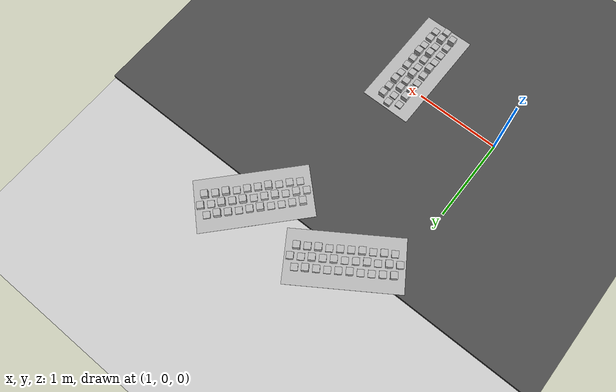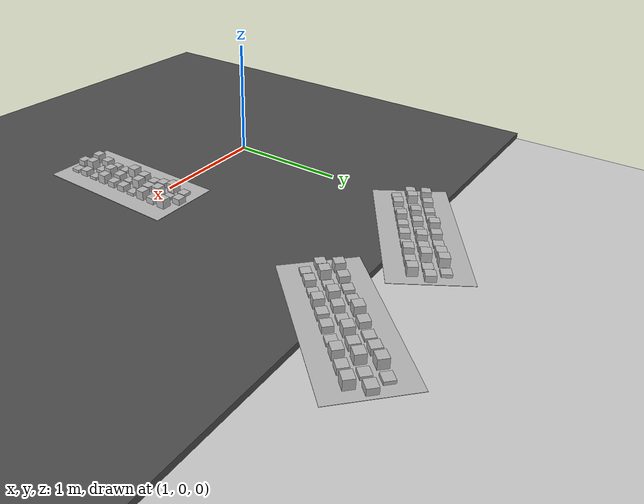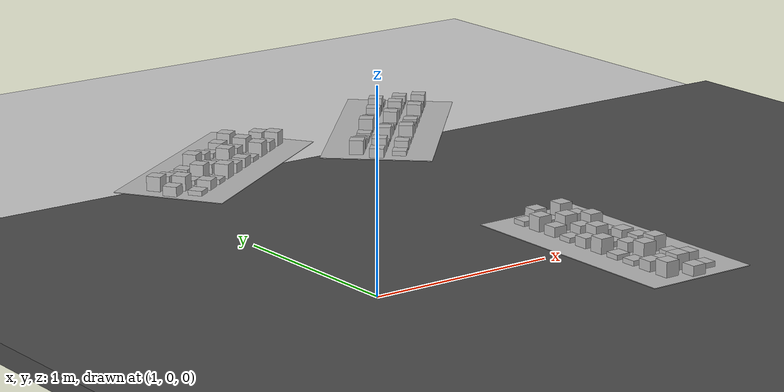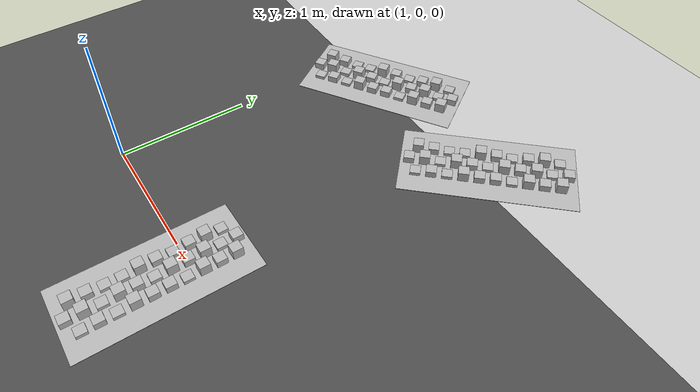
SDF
<sdf version="1.6">
 <world name="default">
  <model name="ground_plane">
   <static>1</static>
   <link name="link">
    <collision name="collision">
     <geometry><plane><normal>0 0 1</normal><size>100 100</size></plane></geometry>
     <surface>
      <contact><collide_bitmask>65535</collide_bitmask></contact>
      <friction><ode><mu>100</mu><mu2>50</mu2></ode></friction>
     </surface>
    </collision>
    <visual name="visual">
     <cast_shadows>0</cast_shadows>
     <geometry><plane><normal>0 0 1</normal><size>100 100</size></plane></geometry>
     <material>
      <script><uri>file://media/materials/scripts/gazebo.material</uri><name>Gazebo/Grey</name></script>
     </material>
    </visual>
   </link>
  </model>
  <model name="frc2016_roughterrain_clone_clone_10">
   <static>1</static>
   <link name="link">
    <visual name="platform">
     <pose>0 0 0.08269 0 -0 0</pose>
     <geometry><box><size>1.27 0.5969 0.003175</size></box></geometry>
    </visual>
    <collision name="platform">
     <pose>0 0 0.08269 0 -0 0</pose>
     <geometry><box><size>1.27 0.5969 0.003175</size></box></geometry>
    </collision>
    <visual name="row1_block1_sm">
     <pose>0.51435 0.1143 0.09698 0 -0 0</pose>
     <geometry><box><size>0.0762 0.0762 0.0254</size></box></geometry>
    </visual>
    <collision name="row1_block1_sm">
     <pose>0.51435 0.1143 0.09698 0 -0 0</pose>
     <geometry><box><size>0.0762 0.0762 0.0254</size></box></geometry>
    </collision>
    <visual name="row1_block2_lg">
     <pose>0.40005 0.1143 0.12238 0 -0 0</pose>
     <geometry><box><size>0.0762 0.0762 0.0762</size></box></geometry>
    </visual>
    <collision name="row1_block2_lg">
     <pose>0.40005 0.1143 0.12238 0 -0 0</pose>
     <geometry><box><size>0.0762 0.0762 0.0762</size></box></geometry>
    </collision>
    <visual name="row1_block3_md">
     <pose>0.28575 0.1143 0.10968 0 -0 0</pose>
     <geometry><box><size>0.0762 0.0762 0.0508</size></box></geometry>
    </visual>
    <collision name="row1_block3_md">
     <pose>0.28575 0.1143 0.10968 0 -0 0</pose>
     <geometry><box><size>0.0762 0.0762 0.0508</size></box></geometry>
    </collision>
    <visual name="row1_block4_sm">
     <pose>0.17145 0.1143 0.09698 0 -0 0</pose>
     <geometry><box><size>0.0762 0.0762 0.0254</size></box></geometry>
    </visual>
    <collision name="row1_block4_sm">
     <pose>0.17145 0.1143 0.09698 0 -0 0</pose>
     <geometry><box><size>0.0762 0.0762 0.0254</size></box></geometry>
    </collision>
    <visual name="row1_block5_md">
     <pose>0.05715 0.1143 0.10968 0 -0 0</pose>
     <geometry><box><size>0.0762 0.0762 0.0508</size></box></geometry>
    </visual>
    <collision name="row1_block5_md">
     <pose>0.05715 0.1143 0.10968 0 -0 0</pose>
     <geometry><box><size>0.0762 0.0762 0.0508</size></box></geometry>
    </collision>
    <visual name="row1_block6_lg">
     <pose>-0.05715 0.1143 0.12238 0 -0 0</pose>
     <geometry><box><size>0.0762 0.0762 0.0762</size></box></geometry>
    </visual>
    <collision name="row1_block6_lg">
     <pose>-0.05715 0.1143 0.12238 0 -0 0</pose>
     <geometry><box><size>0.0762 0.0762 0.0762</size></box></geometry>
    </collision>
    <visual name="row1_block7_sm">
     <pose>-0.17145 0.1143 0.09698 0 -0 0</pose>
     <geometry><box><size>0.0762 0.0762 0.0254</size></box></geometry>
    </visual>
    <collision name="row1_block7_sm">
     <pose>-0.17145 0.1143 0.09698 0 -0 0</pose>
     <geometry><box><size>0.0762 0.0762 0.0254</size></box></geometry>
    </collision>
    <visual name="row1_block8_sm">
     <pose>-0.28575 0.1143 0.09698 0 -0 0</pose>
     <geometry><box><size>0.0762 0.0762 0.0254</size></box></geometry>
    </visual>
    <collision name="row1_block8_sm">
     <pose>-0.28575 0.1143 0.09698 0 -0 0</pose>
     <geometry><box><size>0.0762 0.0762 0.0254</size></box></geometry>
    </collision>
    <visual name="row1_block9_md">
     <pose>-0.40005 0.1143 0.10968 0 -0 0</pose>
     <geometry><box><size>0.0762 0.0762 0.0508</size></box></geometry>
    </visual>
    <collision name="row1_block9_md">
     <pose>-0.40005 0.1143 0.10968 0 -0 0</pose>
     <geometry><box><size>0.0762 0.0762 0.0508</size></box></geometry>
    </collision>
    <visual name="row1_block10_lg">
     <pose>-0.51435 0.1143 0.12238 0 -0 0</pose>
     <geometry><box><size>0.0762 0.0762 0.0762</size></box></geometry>
    </visual>
    <collision name="row1_block10_lg">
     <pose>-0.51435 0.1143 0.12238 0 -0 0</pose>
     <geometry><box><size>0.0762 0.0762 0.0762</size></box></geometry>
    </collision>
    <visual name="row2_block1_md">
     <pose>0.5715 0 0.10968 0 -0 0</pose>
     <geometry><box><size>0.0762 0.0762 0.0508</size></box></geometry>
    </visual>
    <collision name="row2_block1_md">
     <pose>0.5715 0 0.10968 0 -0 0</pose>
     <geometry><box><size>0.0762 0.0762 0.0508</size></box></geometry>
    </collision>
    <visual name="row2_block2_sm">
     <pose>0.4572 0 0.09698 0 -0 0</pose>
     <geometry><box><size>0.0762 0.0762 0.0254</size></box></geometry>
    </visual>
    <collision name="row2_block2_sm">
     <pose>0.4572 0 0.09698 0 -0 0</pose>
     <geometry><box><size>0.0762 0.0762 0.0254</size></box></geometry>
    </collision>
    <visual name="row2_block3_lg">
     <pose>0.3429 0 0.12238 0 -0 0</pose>
     <geometry><box><size>0.0762 0.0762 0.0762</size></box></geometry>
    </visual>
    <collision name="row2_block3_lg">
     <pose>0.3429 0 0.12238 0 -0 0</pose>
     <geometry><box><size>0.0762 0.0762 0.0762</size></box></geometry>
    </collision>
    <visual name="row2_block4_md">
     <pose>0.2286 0 0.10968 0 -0 0</pose>
     <geometry><box><size>0.0762 0.0762 0.0508</size></box></geometry>
    </visual>
    <collision name="row2_block4_md">
     <pose>0.2286 0 0.10968 0 -0 0</pose>
     <geometry><box><size>0.0762 0.0762 0.0508</size></box></geometry>
    </collision>
    <visual name="row2_block5_lg">
     <pose>0.1143 0 0.12238 0 -0 0</pose>
     <geometry><box><size>0.0762 0.0762 0.0762</size></box></geometry>
    </visual>
    <collision name="row2_block5_lg">
     <pose>0.1143 0 0.12238 0 -0 0</pose>
     <geometry><box><size>0.0762 0.0762 0.0762</size></box></geometry>
    </collision>
    <visual name="row2_block6_sm">
     <pose>0 0 0.09698 0 -0 0</pose>
     <geometry><box><size>0.0762 0.0762 0.0254</size></box></geometry>
    </visual>
    <collision name="row2_block6_sm">
     <pose>0 0 0.09698 0 -0 0</pose>
     <geometry><box><size>0.0762 0.0762 0.0254</size></box></geometry>
    </collision>
    <visual name="row2_block7_md">
     <pose>-0.1143 0 0.10968 0 -0 0</pose>
     <geometry><box><size>0.0762 0.0762 0.0508</size></box></geometry>
    </visual>
    <collision name="row2_block7_md">
     <pose>-0.1143 0 0.10968 0 -0 0</pose>
     <geometry><box><size>0.0762 0.0762 0.0508</size></box></geometry>
    </collision>
    <visual name="row2_block8_lg">
     <pose>-0.2286 0 0.12238 0 -0 0</pose>
     <geometry><box><size>0.0762 0.0762 0.0762</size></box></geometry>
    </visual>
    <collision name="row2_block8_lg">
     <pose>-0.2286 0 0.12238 0 -0 0</pose>
     <geometry><box><size>0.0762 0.0762 0.0762</size></box></geometry>
    </collision>
    <visual name="row2_block9_sm">
     <pose>-0.3429 0 0.09698 0 -0 0</pose>
     <geometry><box><size>0.0762 0.0762 0.0254</size></box></geometry>
    </visual>
    <collision name="row2_block9_sm">
     <pose>-0.3429 0 0.09698 0 -0 0</pose>
     <geometry><box><size>0.0762 0.0762 0.0254</size></box></geometry>
    </collision>
    <visual name="row2_block10_lg">
     <pose>-0.4572 0 0.12238 0 -0 0</pose>
     <geometry><box><size>0.0762 0.0762 0.0762</size></box></geometry>
    </visual>
    <collision name="row2_block10_lg">
     <pose>-0.4572 0 0.12238 0 -0 0</pose>
     <geometry><box><size>0.0762 0.0762 0.0762</size></box></geometry>
    </collision>
    <visual name="row2_block11_md">
     <pose>-0.5715 0 0.10968 0 -0 0</pose>
     <geometry><box><size>0.0762 0.0762 0.0508</size></box></geometry>
    </visual>
    <collision name="row2_block11_md">
     <pose>-0.5715 0 0.10968 0 -0 0</pose>
     <geometry><box><size>0.0762 0.0762 0.0508</size></box></geometry>
    </collision>
    <visual name="row3_block1_lg">
     <pose>0.51435 -0.1143 0.12238 0 -0 0</pose>
     <geometry><box><size>0.0762 0.0762 0.0762</size></box></geometry>
    </visual>
    <collision name="row3_block1_lg">
     <pose>0.51435 -0.1143 0.12238 0 -0 0</pose>
     <geometry><box><size>0.0762 0.0762 0.0762</size></box></geometry>
    </collision>
    <visual name="row3_block2_md">
     <pose>0.40005 -0.1143 0.10968 0 -0 0</pose>
     <geometry><box><size>0.0762 0.0762 0.0508</size></box></geometry>
    </visual>
    <collision name="row3_block2_md">
     <pose>0.40005 -0.1143 0.10968 0 -0 0</pose>
     <geometry><box><size>0.0762 0.0762 0.0508</size></box></geometry>
    </collision>
    <visual name="row3_block3_lg">
     <pose>0.28575 -0.1143 0.12238 0 -0 0</pose>
     <geometry><box><size>0.0762 0.0762 0.0762</size></box></geometry>
    </visual>
    <collision name="row3_block3_lg">
     <pose>0.28575 -0.1143 0.12238 0 -0 0</pose>
     <geometry><box><size>0.0762 0.0762 0.0762</size></box></geometry>
    </collision>
    <visual name="row3_block4_sm">
     <pose>0.17145 -0.1143 0.09698 0 -0 0</pose>
     <geometry><box><size>0.0762 0.0762 0.0254</size></box></geometry>
    </visual>
    <collision name="row3_block4_sm">
     <pose>0.17145 -0.1143 0.09698 0 -0 0</pose>
     <geometry><box><size>0.0762 0.0762 0.0254</size></box></geometry>
    </collision>
    <visual name="row3_block5_md">
     <pose>0.05715 -0.1143 0.10968 0 -0 0</pose>
     <geometry><box><size>0.0762 0.0762 0.0508</size></box></geometry>
    </visual>
    <collision name="row3_block5_md">
     <pose>0.05715 -0.1143 0.10968 0 -0 0</pose>
     <geometry><box><size>0.0762 0.0762 0.0508</size></box></geometry>
    </collision>
    <visual name="row3_block6_md">
     <pose>-0.05715 -0.1143 0.10968 0 -0 0</pose>
     <geometry><box><size>0.0762 0.0762 0.0508</size></box></geometry>
    </visual>
    <collision name="row3_block6_md">
     <pose>-0.05715 -0.1143 0.10968 0 -0 0</pose>
     <geometry><box><size>0.0762 0.0762 0.0508</size></box></geometry>
    </collision>
    <visual name="row3_block7_lg">
     <pose>-0.17145 -0.1143 0.12238 0 -0 0</pose>
     <geometry><box><size>0.0762 0.0762 0.0762</size></box></geometry>
    </visual>
    <collision name="row3_block7_lg">
     <pose>-0.17145 -0.1143 0.12238 0 -0 0</pose>
     <geometry><box><size>0.0762 0.0762 0.0762</size></box></geometry>
    </collision>
    <visual name="row3_block8_sm">
     <pose>-0.28575 -0.1143 0.09698 0 -0 0</pose>
     <geometry><box><size>0.0762 0.0762 0.0254</size></box></geometry>
    </visual>
    <collision name="row3_block8_sm">
     <pose>-0.28575 -0.1143 0.09698 0 -0 0</pose>
     <geometry><box><size>0.0762 0.0762 0.0254</size></box></geometry>
    </collision>
    <visual name="row3_block9_md">
     <pose>-0.40005 -0.1143 0.10968 0 -0 0</pose>
     <geometry><box><size>0.0762 0.0762 0.0508</size></box></geometry>
    </visual>
    <collision name="row3_block9_md">
     <pose>-0.40005 -0.1143 0.10968 0 -0 0</pose>
     <geometry><box><size>0.0762 0.0762 0.0508</size></box></geometry>
    </collision>
    <visual name="row3_block10_sm">
     <pose>-0.51435 -0.1143 0.09698 0 -0 0</pose>
     <geometry><box><size>0.0762 0.0762 0.0254</size></box></geometry>
    </visual>
    <collision name="row3_block10_sm">
     <pose>-0.51435 -0.1143 0.09698 0 -0 0</pose>
     <geometry><box><size>0.0762 0.0762 0.0254</size></box></geometry>
    </collision>
   </link>
   <pose>2.2298 -0.228684 0 0 -0 1.57</pose>
  </model>
  <model name="frc2016_roughterrain_clone_clone_12">
   <static>1</static>
   <link name="link">
    <visual name="platform">
     <pose>0 0 0.08269 0 -0 0</pose>
     <geometry><box><size>1.27 0.5969 0.003175</size></box></geometry>
    </visual>
    <collision name="platform">
     <pose>0 0 0.08269 0 -0 0</pose>
     <geometry><box><size>1.27 0.5969 0.003175</size></box></geometry>
    </collision>
    <visual name="row1_block1_sm">
     <pose>0.51435 0.1143 0.09698 0 -0 0</pose>
     <geometry><box><size>0.0762 0.0762 0.0254</size></box></geometry>
    </visual>
    <collision name="row1_block1_sm">
     <pose>0.51435 0.1143 0.09698 0 -0 0</pose>
     <geometry><box><size>0.0762 0.0762 0.0254</size></box></geometry>
    </collision>
    <visual name="row1_block2_lg">
     <pose>0.40005 0.1143 0.12238 0 -0 0</pose>
     <geometry><box><size>0.0762 0.0762 0.0762</size></box></geometry>
    </visual>
    <collision name="row1_block2_lg">
     <pose>0.40005 0.1143 0.12238 0 -0 0</pose>
     <geometry><box><size>0.0762 0.0762 0.0762</size></box></geometry>
    </collision>
    <visual name="row1_block3_md">
     <pose>0.28575 0.1143 0.10968 0 -0 0</pose>
     <geometry><box><size>0.0762 0.0762 0.0508</size></box></geometry>
    </visual>
    <collision name="row1_block3_md">
     <pose>0.28575 0.1143 0.10968 0 -0 0</pose>
     <geometry><box><size>0.0762 0.0762 0.0508</size></box></geometry>
    </collision>
    <visual name="row1_block4_sm">
     <pose>0.17145 0.1143 0.09698 0 -0 0</pose>
     <geometry><box><size>0.0762 0.0762 0.0254</size></box></geometry>
    </visual>
    <collision name="row1_block4_sm">
     <pose>0.17145 0.1143 0.09698 0 -0 0</pose>
     <geometry><box><size>0.0762 0.0762 0.0254</size></box></geometry>
    </collision>
    <visual name="row1_block5_md">
     <pose>0.05715 0.1143 0.10968 0 -0 0</pose>
     <geometry><box><size>0.0762 0.0762 0.0508</size></box></geometry>
    </visual>
    <collision name="row1_block5_md">
     <pose>0.05715 0.1143 0.10968 0 -0 0</pose>
     <geometry><box><size>0.0762 0.0762 0.0508</size></box></geometry>
    </collision>
    <visual name="row1_block6_lg">
     <pose>-0.05715 0.1143 0.12238 0 -0 0</pose>
     <geometry><box><size>0.0762 0.0762 0.0762</size></box></geometry>
    </visual>
    <collision name="row1_block6_lg">
     <pose>-0.05715 0.1143 0.12238 0 -0 0</pose>
     <geometry><box><size>0.0762 0.0762 0.0762</size></box></geometry>
    </collision>
    <visual name="row1_block7_sm">
     <pose>-0.17145 0.1143 0.09698 0 -0 0</pose>
     <geometry><box><size>0.0762 0.0762 0.0254</size></box></geometry>
    </visual>
    <collision name="row1_block7_sm">
     <pose>-0.17145 0.1143 0.09698 0 -0 0</pose>
     <geometry><box><size>0.0762 0.0762 0.0254</size></box></geometry>
    </collision>
    <visual name="row1_block8_sm">
     <pose>-0.28575 0.1143 0.09698 0 -0 0</pose>
     <geometry><box><size>0.0762 0.0762 0.0254</size></box></geometry>
    </visual>
    <collision name="row1_block8_sm">
     <pose>-0.28575 0.1143 0.09698 0 -0 0</pose>
     <geometry><box><size>0.0762 0.0762 0.0254</size></box></geometry>
    </collision>
    <visual name="row1_block9_md">
     <pose>-0.40005 0.1143 0.10968 0 -0 0</pose>
     <geometry><box><size>0.0762 0.0762 0.0508</size></box></geometry>
    </visual>
    <collision name="row1_block9_md">
     <pose>-0.40005 0.1143 0.10968 0 -0 0</pose>
     <geometry><box><size>0.0762 0.0762 0.0508</size></box></geometry>
    </collision>
    <visual name="row1_block10_lg">
     <pose>-0.51435 0.1143 0.12238 0 -0 0</pose>
     <geometry><box><size>0.0762 0.0762 0.0762</size></box></geometry>
    </visual>
    <collision name="row1_block10_lg">
     <pose>-0.51435 0.1143 0.12238 0 -0 0</pose>
     <geometry><box><size>0.0762 0.0762 0.0762</size></box></geometry>
    </collision>
    <visual name="row2_block1_md">
     <pose>0.5715 0 0.10968 0 -0 0</pose>
     <geometry><box><size>0.0762 0.0762 0.0508</size></box></geometry>
    </visual>
    <collision name="row2_block1_md">
     <pose>0.5715 0 0.10968 0 -0 0</pose>
     <geometry><box><size>0.0762 0.0762 0.0508</size></box></geometry>
    </collision>
    <visual name="row2_block2_sm">
     <pose>0.4572 0 0.09698 0 -0 0</pose>
     <geometry><box><size>0.0762 0.0762 0.0254</size></box></geometry>
    </visual>
    <collision name="row2_block2_sm">
     <pose>0.4572 0 0.09698 0 -0 0</pose>
     <geometry><box><size>0.0762 0.0762 0.0254</size></box></geometry>
    </collision>
    <visual name="row2_block3_lg">
     <pose>0.3429 0 0.12238 0 -0 0</pose>
     <geometry><box><size>0.0762 0.0762 0.0762</size></box></geometry>
    </visual>
    <collision name="row2_block3_lg">
     <pose>0.3429 0 0.12238 0 -0 0</pose>
     <geometry><box><size>0.0762 0.0762 0.0762</size></box></geometry>
    </collision>
    <visual name="row2_block4_md">
     <pose>0.2286 0 0.10968 0 -0 0</pose>
     <geometry><box><size>0.0762 0.0762 0.0508</size></box></geometry>
    </visual>
    <collision name="row2_block4_md">
     <pose>0.2286 0 0.10968 0 -0 0</pose>
     <geometry><box><size>0.0762 0.0762 0.0508</size></box></geometry>
    </collision>
    <visual name="row2_block5_lg">
     <pose>0.1143 0 0.12238 0 -0 0</pose>
     <geometry><box><size>0.0762 0.0762 0.0762</size></box></geometry>
    </visual>
    <collision name="row2_block5_lg">
     <pose>0.1143 0 0.12238 0 -0 0</pose>
     <geometry><box><size>0.0762 0.0762 0.0762</size></box></geometry>
    </collision>
    <visual name="row2_block6_sm">
     <pose>0 0 0.09698 0 -0 0</pose>
     <geometry><box><size>0.0762 0.0762 0.0254</size></box></geometry>
    </visual>
    <collision name="row2_block6_sm">
     <pose>0 0 0.09698 0 -0 0</pose>
     <geometry><box><size>0.0762 0.0762 0.0254</size></box></geometry>
    </collision>
    <visual name="row2_block7_md">
     <pose>-0.1143 0 0.10968 0 -0 0</pose>
     <geometry><box><size>0.0762 0.0762 0.0508</size></box></geometry>
    </visual>
    <collision name="row2_block7_md">
     <pose>-0.1143 0 0.10968 0 -0 0</pose>
     <geometry><box><size>0.0762 0.0762 0.0508</size></box></geometry>
    </collision>
    <visual name="row2_block8_lg">
     <pose>-0.2286 0 0.12238 0 -0 0</pose>
     <geometry><box><size>0.0762 0.0762 0.0762</size></box></geometry>
    </visual>
    <collision name="row2_block8_lg">
     <pose>-0.2286 0 0.12238 0 -0 0</pose>
     <geometry><box><size>0.0762 0.0762 0.0762</size></box></geometry>
    </collision>
    <visual name="row2_block9_sm">
     <pose>-0.3429 0 0.09698 0 -0 0</pose>
     <geometry><box><size>0.0762 0.0762 0.0254</size></box></geometry>
    </visual>
    <collision name="row2_block9_sm">
     <pose>-0.3429 0 0.09698 0 -0 0</pose>
     <geometry><box><size>0.0762 0.0762 0.0254</size></box></geometry>
    </collision>
    <visual name="row2_block10_lg">
     <pose>-0.4572 0 0.12238 0 -0 0</pose>
     <geometry><box><size>0.0762 0.0762 0.0762</size></box></geometry>
    </visual>
    <collision name="row2_block10_lg">
     <pose>-0.4572 0 0.12238 0 -0 0</pose>
     <geometry><box><size>0.0762 0.0762 0.0762</size></box></geometry>
    </collision>
    <visual name="row2_block11_md">
     <pose>-0.5715 0 0.10968 0 -0 0</pose>
     <geometry><box><size>0.0762 0.0762 0.0508</size></box></geometry>
    </visual>
    <collision name="row2_block11_md">
     <pose>-0.5715 0 0.10968 0 -0 0</pose>
     <geometry><box><size>0.0762 0.0762 0.0508</size></box></geometry>
    </collision>
    <visual name="row3_block1_lg">
     <pose>0.51435 -0.1143 0.12238 0 -0 0</pose>
     <geometry><box><size>0.0762 0.0762 0.0762</size></box></geometry>
    </visual>
    <collision name="row3_block1_lg">
     <pose>0.51435 -0.1143 0.12238 0 -0 0</pose>
     <geometry><box><size>0.0762 0.0762 0.0762</size></box></geometry>
    </collision>
    <visual name="row3_block2_md">
     <pose>0.40005 -0.1143 0.10968 0 -0 0</pose>
     <geometry><box><size>0.0762 0.0762 0.0508</size></box></geometry>
    </visual>
    <collision name="row3_block2_md">
     <pose>0.40005 -0.1143 0.10968 0 -0 0</pose>
     <geometry><box><size>0.0762 0.0762 0.0508</size></box></geometry>
    </collision>
    <visual name="row3_block3_lg">
     <pose>0.28575 -0.1143 0.12238 0 -0 0</pose>
     <geometry><box><size>0.0762 0.0762 0.0762</size></box></geometry>
    </visual>
    <collision name="row3_block3_lg">
     <pose>0.28575 -0.1143 0.12238 0 -0 0</pose>
     <geometry><box><size>0.0762 0.0762 0.0762</size></box></geometry>
    </collision>
    <visual name="row3_block4_sm">
     <pose>0.17145 -0.1143 0.09698 0 -0 0</pose>
     <geometry><box><size>0.0762 0.0762 0.0254</size></box></geometry>
    </visual>
    <collision name="row3_block4_sm">
     <pose>0.17145 -0.1143 0.09698 0 -0 0</pose>
     <geometry><box><size>0.0762 0.0762 0.0254</size></box></geometry>
    </collision>
    <visual name="row3_block5_md">
     <pose>0.05715 -0.1143 0.10968 0 -0 0</pose>
     <geometry><box><size>0.0762 0.0762 0.0508</size></box></geometry>
    </visual>
    <collision name="row3_block5_md">
     <pose>0.05715 -0.1143 0.10968 0 -0 0</pose>
     <geometry><box><size>0.0762 0.0762 0.0508</size></box></geometry>
    </collision>
    <visual name="row3_block6_md">
     <pose>-0.05715 -0.1143 0.10968 0 -0 0</pose>
     <geometry><box><size>0.0762 0.0762 0.0508</size></box></geometry>
    </visual>
    <collision name="row3_block6_md">
     <pose>-0.05715 -0.1143 0.10968 0 -0 0</pose>
     <geometry><box><size>0.0762 0.0762 0.0508</size></box></geometry>
    </collision>
    <visual name="row3_block7_lg">
     <pose>-0.17145 -0.1143 0.12238 0 -0 0</pose>
     <geometry><box><size>0.0762 0.0762 0.0762</size></box></geometry>
    </visual>
    <collision name="row3_block7_lg">
     <pose>-0.17145 -0.1143 0.12238 0 -0 0</pose>
     <geometry><box><size>0.0762 0.0762 0.0762</size></box></geometry>
    </collision>
    <visual name="row3_block8_sm">
     <pose>-0.28575 -0.1143 0.09698 0 -0 0</pose>
     <geometry><box><size>0.0762 0.0762 0.0254</size></box></geometry>
    </visual>
    <collision name="row3_block8_sm">
     <pose>-0.28575 -0.1143 0.09698 0 -0 0</pose>
     <geometry><box><size>0.0762 0.0762 0.0254</size></box></geometry>
    </collision>
    <visual name="row3_block9_md">
     <pose>-0.40005 -0.1143 0.10968 0 -0 0</pose>
     <geometry><box><size>0.0762 0.0762 0.0508</size></box></geometry>
    </visual>
    <collision name="row3_block9_md">
     <pose>-0.40005 -0.1143 0.10968 0 -0 0</pose>
     <geometry><box><size>0.0762 0.0762 0.0508</size></box></geometry>
    </collision>
    <visual name="row3_block10_sm">
     <pose>-0.51435 -0.1143 0.09698 0 -0 0</pose>
     <geometry><box><size>0.0762 0.0762 0.0254</size></box></geometry>
    </visual>
    <collision name="row3_block10_sm">
     <pose>-0.51435 -0.1143 0.09698 0 -0 0</pose>
     <geometry><box><size>0.0762 0.0762 0.0254</size></box></geometry>
    </collision>
   </link>
   <pose>2.67707 2.13908 0 0 -0 0.82</pose>
  </model>
  <model name="frc2016_roughterrain_clone_clone_12_clone_clone">
   <static>1</static>
   <link name="link">
    <visual name="platform">
     <pose>0 0 0.08269 0 -0 0</pose>
     <geometry><box><size>1.27 0.5969 0.003175</size></box></geometry>
    </visual>
    <collision name="platform">
     <pose>0 0 0.08269 0 -0 0</pose>
     <geometry><box><size>1.27 0.5969 0.003175</size></box></geometry>
    </collision>
    <visual name="row1_block1_sm">
     <pose>0.51435 0.1143 0.09698 0 -0 0</pose>
     <geometry><box><size>0.0762 0.0762 0.0254</size></box></geometry>
    </visual>
    <collision name="row1_block1_sm">
     <pose>0.51435 0.1143 0.09698 0 -0 0</pose>
     <geometry><box><size>0.0762 0.0762 0.0254</size></box></geometry>
    </collision>
    <visual name="row1_block2_lg">
     <pose>0.40005 0.1143 0.12238 0 -0 0</pose>
     <geometry><box><size>0.0762 0.0762 0.0762</size></box></geometry>
    </visual>
    <collision name="row1_block2_lg">
     <pose>0.40005 0.1143 0.12238 0 -0 0</pose>
     <geometry><box><size>0.0762 0.0762 0.0762</size></box></geometry>
    </collision>
    <visual name="row1_block3_md">
     <pose>0.28575 0.1143 0.10968 0 -0 0</pose>
     <geometry><box><size>0.0762 0.0762 0.0508</size></box></geometry>
    </visual>
    <collision name="row1_block3_md">
     <pose>0.28575 0.1143 0.10968 0 -0 0</pose>
     <geometry><box><size>0.0762 0.0762 0.0508</size></box></geometry>
    </collision>
    <visual name="row1_block4_sm">
     <pose>0.17145 0.1143 0.09698 0 -0 0</pose>
     <geometry><box><size>0.0762 0.0762 0.0254</size></box></geometry>
    </visual>
    <collision name="row1_block4_sm">
     <pose>0.17145 0.1143 0.09698 0 -0 0</pose>
     <geometry><box><size>0.0762 0.0762 0.0254</size></box></geometry>
    </collision>
    <visual name="row1_block5_md">
     <pose>0.05715 0.1143 0.10968 0 -0 0</pose>
     <geometry><box><size>0.0762 0.0762 0.0508</size></box></geometry>
    </visual>
    <collision name="row1_block5_md">
     <pose>0.05715 0.1143 0.10968 0 -0 0</pose>
     <geometry><box><size>0.0762 0.0762 0.0508</size></box></geometry>
    </collision>
    <visual name="row1_block6_lg">
     <pose>-0.05715 0.1143 0.12238 0 -0 0</pose>
     <geometry><box><size>0.0762 0.0762 0.0762</size></box></geometry>
    </visual>
    <collision name="row1_block6_lg">
     <pose>-0.05715 0.1143 0.12238 0 -0 0</pose>
     <geometry><box><size>0.0762 0.0762 0.0762</size></box></geometry>
    </collision>
    <visual name="row1_block7_sm">
     <pose>-0.17145 0.1143 0.09698 0 -0 0</pose>
     <geometry><box><size>0.0762 0.0762 0.0254</size></box></geometry>
    </visual>
    <collision name="row1_block7_sm">
     <pose>-0.17145 0.1143 0.09698 0 -0 0</pose>
     <geometry><box><size>0.0762 0.0762 0.0254</size></box></geometry>
    </collision>
    <visual name="row1_block8_sm">
     <pose>-0.28575 0.1143 0.09698 0 -0 0</pose>
     <geometry><box><size>0.0762 0.0762 0.0254</size></box></geometry>
    </visual>
    <collision name="row1_block8_sm">
     <pose>-0.28575 0.1143 0.09698 0 -0 0</pose>
     <geometry><box><size>0.0762 0.0762 0.0254</size></box></geometry>
    </collision>
    <visual name="row1_block9_md">
     <pose>-0.40005 0.1143 0.10968 0 -0 0</pose>
     <geometry><box><size>0.0762 0.0762 0.0508</size></box></geometry>
    </visual>
    <collision name="row1_block9_md">
     <pose>-0.40005 0.1143 0.10968 0 -0 0</pose>
     <geometry><box><size>0.0762 0.0762 0.0508</size></box></geometry>
    </collision>
    <visual name="row1_block10_lg">
     <pose>-0.51435 0.1143 0.12238 0 -0 0</pose>
     <geometry><box><size>0.0762 0.0762 0.0762</size></box></geometry>
    </visual>
    <collision name="row1_block10_lg">
     <pose>-0.51435 0.1143 0.12238 0 -0 0</pose>
     <geometry><box><size>0.0762 0.0762 0.0762</size></box></geometry>
    </collision>
    <visual name="row2_block1_md">
     <pose>0.5715 0 0.10968 0 -0 0</pose>
     <geometry><box><size>0.0762 0.0762 0.0508</size></box></geometry>
    </visual>
    <collision name="row2_block1_md">
     <pose>0.5715 0 0.10968 0 -0 0</pose>
     <geometry><box><size>0.0762 0.0762 0.0508</size></box></geometry>
    </collision>
    <visual name="row2_block2_sm">
     <pose>0.4572 0 0.09698 0 -0 0</pose>
     <geometry><box><size>0.0762 0.0762 0.0254</size></box></geometry>
    </visual>
    <collision name="row2_block2_sm">
     <pose>0.4572 0 0.09698 0 -0 0</pose>
     <geometry><box><size>0.0762 0.0762 0.0254</size></box></geometry>
    </collision>
    <visual name="row2_block3_lg">
     <pose>0.3429 0 0.12238 0 -0 0</pose>
     <geometry><box><size>0.0762 0.0762 0.0762</size></box></geometry>
    </visual>
    <collision name="row2_block3_lg">
     <pose>0.3429 0 0.12238 0 -0 0</pose>
     <geometry><box><size>0.0762 0.0762 0.0762</size></box></geometry>
    </collision>
    <visual name="row2_block4_md">
     <pose>0.2286 0 0.10968 0 -0 0</pose>
     <geometry><box><size>0.0762 0.0762 0.0508</size></box></geometry>
    </visual>
    <collision name="row2_block4_md">
     <pose>0.2286 0 0.10968 0 -0 0</pose>
     <geometry><box><size>0.0762 0.0762 0.0508</size></box></geometry>
    </collision>
    <visual name="row2_block5_lg">
     <pose>0.1143 0 0.12238 0 -0 0</pose>
     <geometry><box><size>0.0762 0.0762 0.0762</size></box></geometry>
    </visual>
    <collision name="row2_block5_lg">
     <pose>0.1143 0 0.12238 0 -0 0</pose>
     <geometry><box><size>0.0762 0.0762 0.0762</size></box></geometry>
    </collision>
    <visual name="row2_block6_sm">
     <pose>0 0 0.09698 0 -0 0</pose>
     <geometry><box><size>0.0762 0.0762 0.0254</size></box></geometry>
    </visual>
    <collision name="row2_block6_sm">
     <pose>0 0 0.09698 0 -0 0</pose>
     <geometry><box><size>0.0762 0.0762 0.0254</size></box></geometry>
    </collision>
    <visual name="row2_block7_md">
     <pose>-0.1143 0 0.10968 0 -0 0</pose>
     <geometry><box><size>0.0762 0.0762 0.0508</size></box></geometry>
    </visual>
    <collision name="row2_block7_md">
     <pose>-0.1143 0 0.10968 0 -0 0</pose>
     <geometry><box><size>0.0762 0.0762 0.0508</size></box></geometry>
    </collision>
    <visual name="row2_block8_lg">
     <pose>-0.2286 0 0.12238 0 -0 0</pose>
     <geometry><box><size>0.0762 0.0762 0.0762</size></box></geometry>
    </visual>
    <collision name="row2_block8_lg">
     <pose>-0.2286 0 0.12238 0 -0 0</pose>
     <geometry><box><size>0.0762 0.0762 0.0762</size></box></geometry>
    </collision>
    <visual name="row2_block9_sm">
     <pose>-0.3429 0 0.09698 0 -0 0</pose>
     <geometry><box><size>0.0762 0.0762 0.0254</size></box></geometry>
    </visual>
    <collision name="row2_block9_sm">
     <pose>-0.3429 0 0.09698 0 -0 0</pose>
     <geometry><box><size>0.0762 0.0762 0.0254</size></box></geometry>
    </collision>
    <visual name="row2_block10_lg">
     <pose>-0.4572 0 0.12238 0 -0 0</pose>
     <geometry><box><size>0.0762 0.0762 0.0762</size></box></geometry>
    </visual>
    <collision name="row2_block10_lg">
     <pose>-0.4572 0 0.12238 0 -0 0</pose>
     <geometry><box><size>0.0762 0.0762 0.0762</size></box></geometry>
    </collision>
    <visual name="row2_block11_md">
     <pose>-0.5715 0 0.10968 0 -0 0</pose>
     <geometry><box><size>0.0762 0.0762 0.0508</size></box></geometry>
    </visual>
    <collision name="row2_block11_md">
     <pose>-0.5715 0 0.10968 0 -0 0</pose>
     <geometry><box><size>0.0762 0.0762 0.0508</size></box></geometry>
    </collision>
    <visual name="row3_block1_lg">
     <pose>0.51435 -0.1143 0.12238 0 -0 0</pose>
     <geometry><box><size>0.0762 0.0762 0.0762</size></box></geometry>
    </visual>
    <collision name="row3_block1_lg">
     <pose>0.51435 -0.1143 0.12238 0 -0 0</pose>
     <geometry><box><size>0.0762 0.0762 0.0762</size></box></geometry>
    </collision>
    <visual name="row3_block2_md">
     <pose>0.40005 -0.1143 0.10968 0 -0 0</pose>
     <geometry><box><size>0.0762 0.0762 0.0508</size></box></geometry>
    </visual>
    <collision name="row3_block2_md">
     <pose>0.40005 -0.1143 0.10968 0 -0 0</pose>
     <geometry><box><size>0.0762 0.0762 0.0508</size></box></geometry>
    </collision>
    <visual name="row3_block3_lg">
     <pose>0.28575 -0.1143 0.12238 0 -0 0</pose>
     <geometry><box><size>0.0762 0.0762 0.0762</size></box></geometry>
    </visual>
    <collision name="row3_block3_lg">
     <pose>0.28575 -0.1143 0.12238 0 -0 0</pose>
     <geometry><box><size>0.0762 0.0762 0.0762</size></box></geometry>
    </collision>
    <visual name="row3_block4_sm">
     <pose>0.17145 -0.1143 0.09698 0 -0 0</pose>
     <geometry><box><size>0.0762 0.0762 0.0254</size></box></geometry>
    </visual>
    <collision name="row3_block4_sm">
     <pose>0.17145 -0.1143 0.09698 0 -0 0</pose>
     <geometry><box><size>0.0762 0.0762 0.0254</size></box></geometry>
    </collision>
    <visual name="row3_block5_md">
     <pose>0.05715 -0.1143 0.10968 0 -0 0</pose>
     <geometry><box><size>0.0762 0.0762 0.0508</size></box></geometry>
    </visual>
    <collision name="row3_block5_md">
     <pose>0.05715 -0.1143 0.10968 0 -0 0</pose>
     <geometry><box><size>0.0762 0.0762 0.0508</size></box></geometry>
    </collision>
    <visual name="row3_block6_md">
     <pose>-0.05715 -0.1143 0.10968 0 -0 0</pose>
     <geometry><box><size>0.0762 0.0762 0.0508</size></box></geometry>
    </visual>
    <collision name="row3_block6_md">
     <pose>-0.05715 -0.1143 0.10968 0 -0 0</pose>
     <geometry><box><size>0.0762 0.0762 0.0508</size></box></geometry>
    </collision>
    <visual name="row3_block7_lg">
     <pose>-0.17145 -0.1143 0.12238 0 -0 0</pose>
     <geometry><box><size>0.0762 0.0762 0.0762</size></box></geometry>
    </visual>
    <collision name="row3_block7_lg">
     <pose>-0.17145 -0.1143 0.12238 0 -0 0</pose>
     <geometry><box><size>0.0762 0.0762 0.0762</size></box></geometry>
    </collision>
    <visual name="row3_block8_sm">
     <pose>-0.28575 -0.1143 0.09698 0 -0 0</pose>
     <geometry><box><size>0.0762 0.0762 0.0254</size></box></geometry>
    </visual>
    <collision name="row3_block8_sm">
     <pose>-0.28575 -0.1143 0.09698 0 -0 0</pose>
     <geometry><box><size>0.0762 0.0762 0.0254</size></box></geometry>
    </collision>
    <visual name="row3_block9_md">
     <pose>-0.40005 -0.1143 0.10968 0 -0 0</pose>
     <geometry><box><size>0.0762 0.0762 0.0508</size></box></geometry>
    </visual>
    <collision name="row3_block9_md">
     <pose>-0.40005 -0.1143 0.10968 0 -0 0</pose>
     <geometry><box><size>0.0762 0.0762 0.0508</size></box></geometry>
    </collision>
    <visual name="row3_block10_sm">
     <pose>-0.51435 -0.1143 0.09698 0 -0 0</pose>
     <geometry><box><size>0.0762 0.0762 0.0254</size></box></geometry>
    </visual>
    <collision name="row3_block10_sm">
     <pose>-0.51435 -0.1143 0.09698 0 -0 0</pose>
     <geometry><box><size>0.0762 0.0762 0.0254</size></box></geometry>
    </collision>
   </link>
   <pose>1.49683 2.06675 0 0 -0 0.580001</pose>
  </model>
  <model name="asphalt_plane">
   <static>1</static>
   <link name="link">
    <collision name="collision"><geometry><box><size>20 20 0.1</size></box></geometry></collision>
    <visual name="visual">
     <cast_shadows>0</cast_shadows>
     <geometry><box><size>20 20 0.1</size></box></geometry>
     <material>
      <script>
       <uri>model://asphalt_plane/materials/scripts</uri>
       <uri>model://asphalt_plane/materials/textures</uri>
       <name>vrc/asphalt</name>
      </script>
     </material>
    </visual>
   </link>
   <pose>-0.308483 -7.98775 0 0 -0 0</pose>
  </model>
 </world>
</sdf>
